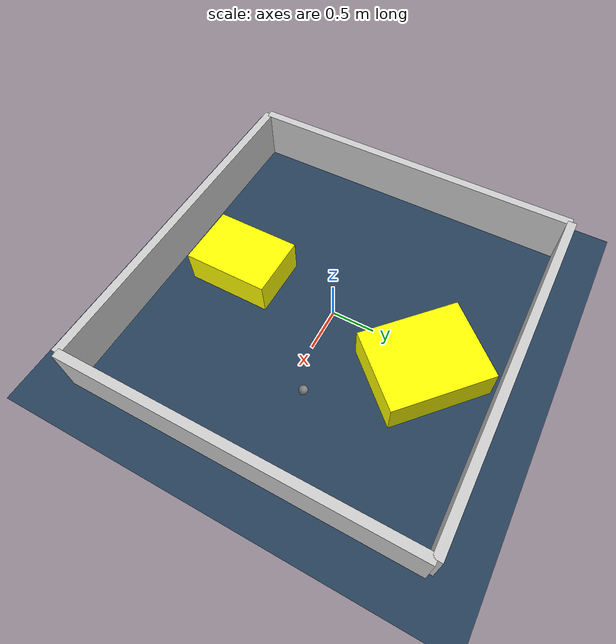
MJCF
<?xml version="1.0" ?>
<mujoco model="generated_environment">
  <option timestep="0.01" integrator="RK4" cone="elliptic"/>
  <default>
    <geom density="1"/>
  </default>
  <asset>
    <texture builtin="gradient" height="3072" rgb1="0.3 0.5 0.7" rgb2="0 0 0" type="skybox" width="512"/>
    <texture builtin="checker" height="300" mark="edge" markrgb="0.8 0.8 0.8" name="groundplane" rgb1="0.2 0.3 0.4" rgb2="0.1 0.2 0.3" type="2d" width="300"/>
    <material name="groundplane" reflectance="0.2" texrepeat="5 5" texture="groundplane" texuniform="true"/>
    <material name="robot" rgba="0.0 1.0 0.0 1"/>
  </asset>
  <worldbody>
    <light dir="0 0 -1" directional="true" pos="0 0 1.5"/>
    <geom condim="4" friction="1.0 0.005 0.001" material="groundplane" name="floor" size="0 0 0.05" type="plane"/>
    <body name="walls">
      <geom name="wall_1" condim="4" pos="-2.0 0.0 0.3" rgba="0.800000011920929 0.800000011920929 0.800000011920929 1.0" size="0.05 2.0 0.3" type="box"/>
      <geom name="wall_2" condim="4" pos="2.0 0.0 0.3" rgba="0.800000011920929 0.800000011920929 0.800000011920929 1.0" size="0.05 2.0 0.3" type="box"/>
      <geom name="wall_3" condim="4" pos="0.0 -2.0 0.3" rgba="0.800000011920929 0.800000011920929 0.800000011920929 1.0" size="2.0 0.05 0.3" type="box"/>
      <geom name="wall_4" condim="4" pos="0.0 2.0 0.3" rgba="0.800000011920929 0.800000011920929 0.800000011920929 1.0" size="2.0 0.05 0.3" type="box"/>
    </body>
    <body name="robot">
      <joint name="joint_x" type="slide" pos="0 0 0" axis="1 0 0"/>
      <joint name="joint_y" type="slide" pos="0 0 0" axis="0 1 0"/>
      <geom name="robot" type="sphere" pos="1.0630745259195113 0.22266679457873884 0.2" size="0.05" mass="5." friction="1.0 0.005 0.0001" condim="4"/>
      <site name="sensor_ball"/>
    </body>
    <body name="obstacle_1_movable">
      <geom name="obstacle_1_movable" condim="4" pos="-0.035121170731579276 -1.1941301502844268 0.2" euler="0 0 359.5507326290185" friction="1.0 0.005 0.001" rgba="1 1 0 1" size="0.35338217001435085 0.49121664219671834 0.2" type="box" mass="0.1"/>
      <joint type="free"/>
    </body>
    <body name="obstacle_2_movable">
      <geom name="obstacle_2_movable" condim="4" pos="0.2160159954196308 1.1762698307730008 0.2" euler="0 0 227.1518051399494" friction="1.0 0.005 0.001" rgba="1 1 0 1" size="0.46178710410835566 0.5755834146736947 0.2" type="box" mass="0.1"/>
      <joint type="free"/>
    </body>
  </worldbody>
  <actuator>
    <motor name="actuator_x" joint="joint_x" gear="1" ctrlrange="-1 1"/>
    <motor name="actuator_y" joint="joint_y" gear="1" ctrlrange="-1 1"/>
  </actuator>
</mujoco>
